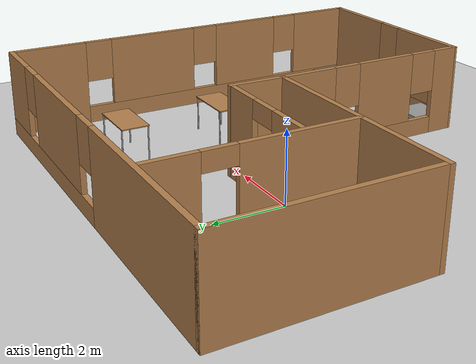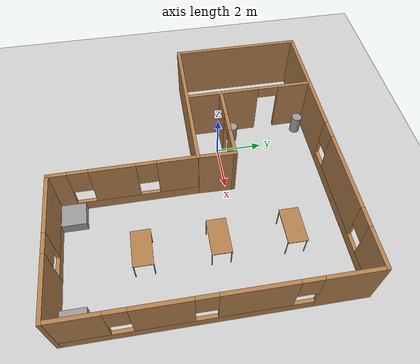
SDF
<sdf version="1.7">
 <world name="default">
  <light name="sun" type="directional">
   <pose>0 0 10 0 -0 0</pose>
   <diffuse>0.8 0.8 0.8 1</diffuse>
   <specular>0.2 0.2 0.2 1</specular>
   <attenuation>
    <range>1000</range>
    <constant>0.9</constant>
    <linear>0.01</linear>
    <quadratic>0.001</quadratic>
   </attenuation>
   <direction>-0.5 0.1 -0.9</direction>
   <spot><inner_angle>0</inner_angle><outer_angle>0</outer_angle><falloff>0</falloff></spot>
  </light>
  <model name="ground_plane">
   <static>1</static>
   <link name="link">
    <collision name="collision">
     <geometry><plane><normal>0 0 1</normal><size>100 100</size></plane></geometry>
     <surface>
      <contact><collide_bitmask>65535</collide_bitmask></contact>
      <friction><ode><mu>100</mu><mu2>50</mu2></ode></friction>
     </surface>
    </collision>
    <visual name="visual">
     <cast_shadows>0</cast_shadows>
     <geometry><plane><normal>0 0 1</normal><size>100 100</size></plane></geometry>
     <material>
      <script><uri>file://media/materials/scripts/gazebo.material</uri><name>Gazebo/Grey</name></script>
     </material>
    </visual>
   </link>
  </model>
  <gravity>0 0 -9.8</gravity>
  <magnetic_field>6e-06 2.3e-05 -4.2e-05</magnetic_field>
  <atmosphere type="adiabatic"/>
  <physics type="ode">
   <max_step_size>0.001</max_step_size>
   <real_time_factor>1</real_time_factor>
   <real_time_update_rate>1000</real_time_update_rate>
  </physics>
  <scene><ambient>0.4 0.4 0.4 1</ambient><background>0.7 0.7 0.7 1</background><shadows>1</shadows></scene>
  <audio><device>default</device></audio>
  <spherical_coordinates>
   <surface_model>EARTH_WGS84</surface_model>
   <latitude_deg>0</latitude_deg>
   <longitude_deg>0</longitude_deg>
   <elevation>0</elevation>
   <heading_deg>0</heading_deg>
  </spherical_coordinates>
  <model name="Untitled">
   <pose>1.805 -1.34511 0 0 -0 0</pose>
   <link name="Wall_0">
    <collision name="Wall_0_Collision">
     <geometry><box><size>5.5 0.15 2.5</size></box></geometry>
     <pose>0 0 1.25 0 -0 0</pose>
    </collision>
    <visual name="Wall_0_Visual">
     <pose>0 0 1.25 0 -0 0</pose>
     <geometry><box><size>5.5 0.15 2.5</size></box></geometry>
     <material>
      <script><uri>file://media/materials/scripts/gazebo.material</uri><name>Gazebo/Wood</name></script>
      <ambient>1 1 1 1</ambient>
     </material>
     <meta><layer>0</layer></meta>
    </visual>
    <pose>-5.925 3.00011 0 0 -0 1.5708</pose>
   </link>
   <link name="Wall_1">
    <pose>-0 5.67511 0 0 -0 0</pose>
    <visual name="Wall_1_Visual_0">
     <pose>-3.32019 0 1.25 0 -0 0</pose>
     <geometry><box><size>5.35962 0.15 2.5</size></box></geometry>
     <material>
      <script><uri>file://media/materials/scripts/gazebo.material</uri><name>Gazebo/Wood</name></script>
      <ambient>1 1 1 1</ambient>
     </material>
     <meta><layer>0</layer></meta>
    </visual>
    <collision name="Wall_1_Collision_0">
     <geometry><box><size>5.35962 0.15 2.5</size></box></geometry>
     <pose>-3.32019 0 1.25 0 -0 0</pose>
    </collision>
    <visual name="Wall_1_Visual_1">
     <pose>2.67981 0 0.25 0 -0 0</pose>
     <geometry><box><size>6.64038 0.15 0.5</size></box></geometry>
     <material>
      <script><uri>file://media/materials/scripts/gazebo.material</uri><name>Gazebo/Wood</name></script>
      <ambient>1 1 1 1</ambient>
     </material>
     <meta><layer>0</layer></meta>
    </visual>
    <collision name="Wall_1_Collision_1">
     <geometry><box><size>6.64038 0.15 0.5</size></box></geometry>
     <pose>2.67981 0 0.25 0 -0 0</pose>
    </collision>
    <visual name="Wall_1_Visual_2">
     <pose>1.86149 0 1.5 0 -0 0</pose>
     <geometry><box><size>3.40374 0.15 2</size></box></geometry>
     <material>
      <script><uri>file://media/materials/scripts/gazebo.material</uri><name>Gazebo/Wood</name></script>
      <ambient>1 1 1 1</ambient>
     </material>
     <meta><layer>0</layer></meta>
    </visual>
    <collision name="Wall_1_Collision_2">
     <geometry><box><size>3.40374 0.15 2</size></box></geometry>
     <pose>1.86149 0 1.5 0 -0 0</pose>
    </collision>
    <visual name="Wall_1_Visual_3">
     <pose>5.18168 0 1.5 0 -0 0</pose>
     <geometry><box><size>1.63664 0.15 2</size></box></geometry>
     <material>
      <script><uri>file://media/materials/scripts/gazebo.material</uri><name>Gazebo/Wood</name></script>
      <ambient>1 1 1 1</ambient>
     </material>
     <meta><layer>0</layer></meta>
    </visual>
    <collision name="Wall_1_Collision_3">
     <geometry><box><size>1.63664 0.15 2</size></box></geometry>
     <pose>5.18168 0 1.5 0 -0 0</pose>
    </collision>
    <visual name="Wall_1_Visual_4">
     <pose>-0.240377 0 1.9 0 -0 0</pose>
     <geometry><box><size>0.8 0.15 1.2</size></box></geometry>
     <material>
      <script><uri>file://media/materials/scripts/gazebo.material</uri><name>Gazebo/Wood</name></script>
      <ambient>1 1 1 1</ambient>
     </material>
     <meta><layer>0</layer></meta>
    </visual>
    <collision name="Wall_1_Collision_4">
     <geometry><box><size>0.8 0.15 1.2</size></box></geometry>
     <pose>-0.240377 0 1.9 0 -0 0</pose>
    </collision>
    <visual name="Wall_1_Visual_5">
     <pose>3.96336 0 1.9 0 -0 0</pose>
     <geometry><box><size>0.8 0.15 1.2</size></box></geometry>
     <material>
      <script><uri>file://media/materials/scripts/gazebo.material</uri><name>Gazebo/Wood</name></script>
      <ambient>1 1 1 1</ambient>
     </material>
     <meta><layer>0</layer></meta>
    </visual>
    <collision name="Wall_1_Collision_5">
     <geometry><box><size>0.8 0.15 1.2</size></box></geometry>
     <pose>3.96336 0 1.9 0 -0 0</pose>
    </collision>
   </link>
   <link name="Wall_11">
    <collision name="Wall_11_Collision">
     <geometry><box><size>1.63649 0.15 2.5</size></box></geometry>
     <pose>0 0 1.25 0 -0 0</pose>
    </collision>
    <visual name="Wall_11_Visual">
     <pose>0 0 1.25 0 -0 0</pose>
     <geometry><box><size>1.63649 0.15 2.5</size></box></geometry>
     <material>
      <script><uri>file://media/materials/scripts/gazebo.material</uri><name>Gazebo/Wood</name></script>
      <ambient>1 1 1 1</ambient>
     </material>
     <meta><layer>0</layer></meta>
    </visual>
    <pose>0.327364 0.896432 0 0 -0 1.54445</pose>
   </link>
   <link name="Wall_2">
    <pose>5.925 0.00011 0 0 -0 -1.5708</pose>
    <visual name="Wall_2_Visual_0">
     <pose>-4.63054 0 1.25 0 -0 0</pose>
     <geometry><box><size>2.23891 0.15 2.5</size></box></geometry>
     <material>
      <script><uri>file://media/materials/scripts/gazebo.material</uri><name>Gazebo/Wood</name></script>
      <ambient>1 1 1 1</ambient>
     </material>
     <meta><layer>0</layer></meta>
    </visual>
    <collision name="Wall_2_Collision_0">
     <geometry><box><size>2.23891 0.15 2.5</size></box></geometry>
     <pose>-4.63054 0 1.25 0 -0 0</pose>
    </collision>
    <visual name="Wall_2_Visual_1">
     <pose>1.11946 0 0.25 0 -0 0</pose>
     <geometry><box><size>9.26108 0.15 0.5</size></box></geometry>
     <material>
      <script><uri>file://media/materials/scripts/gazebo.material</uri><name>Gazebo/Wood</name></script>
      <ambient>1 1 1 1</ambient>
     </material>
     <meta><layer>0</layer></meta>
    </visual>
    <collision name="Wall_2_Collision_1">
     <geometry><box><size>9.26108 0.15 0.5</size></box></geometry>
     <pose>1.11946 0 0.25 0 -0 0</pose>
    </collision>
    <visual name="Wall_2_Visual_2">
     <pose>-1.34852 0 1.5 0 -0 0</pose>
     <geometry><box><size>2.72512 0.15 2</size></box></geometry>
     <material>
      <script><uri>file://media/materials/scripts/gazebo.material</uri><name>Gazebo/Wood</name></script>
      <ambient>1 1 1 1</ambient>
     </material>
     <meta><layer>0</layer></meta>
    </visual>
    <collision name="Wall_2_Collision_2">
     <geometry><box><size>2.72512 0.15 2</size></box></geometry>
     <pose>-1.34852 0 1.5 0 -0 0</pose>
    </collision>
    <visual name="Wall_2_Visual_3">
     <pose>1.88974 0 1.5 0 -0 0</pose>
     <geometry><box><size>2.1514 0.15 2</size></box></geometry>
     <material>
      <script><uri>file://media/materials/scripts/gazebo.material</uri><name>Gazebo/Wood</name></script>
      <ambient>1 1 1 1</ambient>
     </material>
     <meta><layer>0</layer></meta>
    </visual>
    <collision name="Wall_2_Collision_3">
     <geometry><box><size>2.1514 0.15 2</size></box></geometry>
     <pose>1.88974 0 1.5 0 -0 0</pose>
    </collision>
    <visual name="Wall_2_Visual_4">
     <pose>4.75772 0 1.5 0 -0 0</pose>
     <geometry><box><size>1.98456 0.15 2</size></box></geometry>
     <material>
      <script><uri>file://media/materials/scripts/gazebo.material</uri><name>Gazebo/Wood</name></script>
      <ambient>1 1 1 1</ambient>
     </material>
     <meta><layer>0</layer></meta>
    </visual>
    <collision name="Wall_2_Collision_4">
     <geometry><box><size>1.98456 0.15 2</size></box></geometry>
     <pose>4.75772 0 1.5 0 -0 0</pose>
    </collision>
    <visual name="Wall_2_Visual_5">
     <pose>-3.11109 0 1.9 0 -0 0</pose>
     <geometry><box><size>0.8 0.15 1.2</size></box></geometry>
     <material>
      <script><uri>file://media/materials/scripts/gazebo.material</uri><name>Gazebo/Wood</name></script>
      <ambient>1 1 1 1</ambient>
     </material>
     <meta><layer>0</layer></meta>
    </visual>
    <collision name="Wall_2_Collision_5">
     <geometry><box><size>0.8 0.15 1.2</size></box></geometry>
     <pose>-3.11109 0 1.9 0 -0 0</pose>
    </collision>
    <visual name="Wall_2_Visual_6">
     <pose>0.41404 0 1.9 0 -0 0</pose>
     <geometry><box><size>0.8 0.15 1.2</size></box></geometry>
     <material>
      <script><uri>file://media/materials/scripts/gazebo.material</uri><name>Gazebo/Wood</name></script>
      <ambient>1 1 1 1</ambient>
     </material>
     <meta><layer>0</layer></meta>
    </visual>
    <collision name="Wall_2_Collision_6">
     <geometry><box><size>0.8 0.15 1.2</size></box></geometry>
     <pose>0.41404 0 1.9 0 -0 0</pose>
    </collision>
    <visual name="Wall_2_Visual_7">
     <pose>3.36544 0 1.9 0 -0 0</pose>
     <geometry><box><size>0.8 0.15 1.2</size></box></geometry>
     <material>
      <script><uri>file://media/materials/scripts/gazebo.material</uri><name>Gazebo/Wood</name></script>
      <ambient>1 1 1 1</ambient>
     </material>
     <meta><layer>0</layer></meta>
    </visual>
    <collision name="Wall_2_Collision_7">
     <geometry><box><size>0.8 0.15 1.2</size></box></geometry>
     <pose>3.36544 0 1.9 0 -0 0</pose>
    </collision>
   </link>
   <link name="Wall_3">
    <pose>3.125 -5.67489 0 0 -0 3.14159</pose>
    <visual name="Wall_3_Visual_0">
     <pose>-1.65227 0 1.25 0 -0 0</pose>
     <geometry><box><size>2.44547 0.15 2.5</size></box></geometry>
     <material>
      <script><uri>file://media/materials/scripts/gazebo.material</uri><name>Gazebo/Wood</name></script>
      <ambient>1 1 1 1</ambient>
     </material>
     <meta><layer>0</layer></meta>
    </visual>
    <collision name="Wall_3_Collision_0">
     <geometry><box><size>2.44547 0.15 2.5</size></box></geometry>
     <pose>-1.65227 0 1.25 0 -0 0</pose>
    </collision>
    <visual name="Wall_3_Visual_1">
     <pose>1.22273 0 0.25 0 -0 0</pose>
     <geometry><box><size>3.30453 0.15 0.5</size></box></geometry>
     <material>
      <script><uri>file://media/materials/scripts/gazebo.material</uri><name>Gazebo/Wood</name></script>
      <ambient>1 1 1 1</ambient>
     </material>
     <meta><layer>0</layer></meta>
    </visual>
    <collision name="Wall_3_Collision_1">
     <geometry><box><size>3.30453 0.15 0.5</size></box></geometry>
     <pose>1.22273 0 0.25 0 -0 0</pose>
    </collision>
    <visual name="Wall_3_Visual_2">
     <pose>1.62273 0 1.5 0 -0 0</pose>
     <geometry><box><size>2.50453 0.15 2</size></box></geometry>
     <material>
      <script><uri>file://media/materials/scripts/gazebo.material</uri><name>Gazebo/Wood</name></script>
      <ambient>1 1 1 1</ambient>
     </material>
     <meta><layer>0</layer></meta>
    </visual>
    <collision name="Wall_3_Collision_2">
     <geometry><box><size>2.50453 0.15 2</size></box></geometry>
     <pose>1.62273 0 1.5 0 -0 0</pose>
    </collision>
    <visual name="Wall_3_Visual_3">
     <pose>-0.029531 0 1.9 0 -0 0</pose>
     <geometry><box><size>0.8 0.15 1.2</size></box></geometry>
     <material>
      <script><uri>file://media/materials/scripts/gazebo.material</uri><name>Gazebo/Wood</name></script>
      <ambient>1 1 1 1</ambient>
     </material>
     <meta><layer>0</layer></meta>
    </visual>
    <collision name="Wall_3_Collision_3">
     <geometry><box><size>0.8 0.15 1.2</size></box></geometry>
     <pose>-0.029531 0 1.9 0 -0 0</pose>
    </collision>
   </link>
   <link name="Wall_4">
    <pose>0.316394 -2.7645 0 0 -0 1.57375</pose>
    <visual name="Wall_4_Visual_0">
     <pose>-2.5713 0 1.25 0 -0 0</pose>
     <geometry><box><size>0.828193 0.15 2.5</size></box></geometry>
     <material>
      <script><uri>file://media/materials/scripts/gazebo.material</uri><name>Gazebo/Wood</name></script>
      <ambient>1 1 1 1</ambient>
     </material>
     <meta><layer>0</layer></meta>
    </visual>
    <collision name="Wall_4_Collision_0">
     <geometry><box><size>0.828193 0.15 2.5</size></box></geometry>
     <pose>-2.5713 0 1.25 0 -0 0</pose>
    </collision>
    <visual name="Wall_4_Visual_1">
     <pose>0.414097 0 0.25 0 -0 0</pose>
     <geometry><box><size>5.1426 0.15 0.5</size></box></geometry>
     <material>
      <script><uri>file://media/materials/scripts/gazebo.material</uri><name>Gazebo/Wood</name></script>
      <ambient>1 1 1 1</ambient>
     </material>
     <meta><layer>0</layer></meta>
    </visual>
    <collision name="Wall_4_Collision_1">
     <geometry><box><size>5.1426 0.15 0.5</size></box></geometry>
     <pose>0.414097 0 0.25 0 -0 0</pose>
    </collision>
    <visual name="Wall_4_Visual_2">
     <pose>-0.441655 0 1.5 0 -0 0</pose>
     <geometry><box><size>1.8311 0.15 2</size></box></geometry>
     <material>
      <script><uri>file://media/materials/scripts/gazebo.material</uri><name>Gazebo/Wood</name></script>
      <ambient>1 1 1 1</ambient>
     </material>
     <meta><layer>0</layer></meta>
    </visual>
    <collision name="Wall_4_Collision_2">
     <geometry><box><size>1.8311 0.15 2</size></box></geometry>
     <pose>-0.441655 0 1.5 0 -0 0</pose>
    </collision>
    <visual name="Wall_4_Visual_3">
     <pose>2.12965 0 1.5 0 -0 0</pose>
     <geometry><box><size>1.7115 0.15 2</size></box></geometry>
     <material>
      <script><uri>file://media/materials/scripts/gazebo.material</uri><name>Gazebo/Wood</name></script>
      <ambient>1 1 1 1</ambient>
     </material>
     <meta><layer>0</layer></meta>
    </visual>
    <collision name="Wall_4_Collision_3">
     <geometry><box><size>1.7115 0.15 2</size></box></geometry>
     <pose>2.12965 0 1.5 0 -0 0</pose>
    </collision>
    <visual name="Wall_4_Visual_4">
     <pose>-1.75721 0 1.9 0 -0 0</pose>
     <geometry><box><size>0.8 0.15 1.2</size></box></geometry>
     <material>
      <script><uri>file://media/materials/scripts/gazebo.material</uri><name>Gazebo/Wood</name></script>
      <ambient>1 1 1 1</ambient>
     </material>
     <meta><layer>0</layer></meta>
    </visual>
    <collision name="Wall_4_Collision_4">
     <geometry><box><size>0.8 0.15 1.2</size></box></geometry>
     <pose>-1.75721 0 1.9 0 -0 0</pose>
    </collision>
    <visual name="Wall_4_Visual_5">
     <pose>0.873896 0 1.9 0 -0 0</pose>
     <geometry><box><size>0.8 0.15 1.2</size></box></geometry>
     <material>
      <script><uri>file://media/materials/scripts/gazebo.material</uri><name>Gazebo/Wood</name></script>
      <ambient>1 1 1 1</ambient>
     </material>
     <meta><layer>0</layer></meta>
    </visual>
    <collision name="Wall_4_Collision_5">
     <geometry><box><size>0.8 0.15 1.2</size></box></geometry>
     <pose>0.873896 0 1.9 0 -0 0</pose>
    </collision>
   </link>
   <link name="Wall_5">
    <collision name="Wall_5_Collision">
     <geometry><box><size>6.38235 0.15 2.5</size></box></geometry>
     <pose>0 0 1.25 0 -0 0</pose>
    </collision>
    <visual name="Wall_5_Visual">
     <pose>0 0 1.25 0 -0 0</pose>
     <geometry><box><size>6.38235 0.15 2.5</size></box></geometry>
     <material>
      <script><uri>file://media/materials/scripts/gazebo.material</uri><name>Gazebo/Wood</name></script>
      <ambient>1 1 1 1</ambient>
     </material>
     <meta><layer>0</layer></meta>
    </visual>
    <pose>-2.80834 0.162406 0 0 -0 3.13629</pose>
   </link>
   <link name="Wall_7">
    <pose>-3.02974 2.88746 0 0 -0 -1.5708</pose>
    <visual name="Wall_7_Visual_0">
     <pose>-2.04747 0 1.25 0 -0 0</pose>
     <geometry><box><size>1.40506 0.15 2.5</size></box></geometry>
     <material>
      <script><uri>file://media/materials/scripts/gazebo.material</uri><name>Gazebo/Wood</name></script>
      <ambient>1 1 1 1</ambient>
     </material>
     <meta><layer>0</layer></meta>
    </visual>
    <collision name="Wall_7_Collision_0">
     <geometry><box><size>1.40506 0.15 2.5</size></box></geometry>
     <pose>-2.04747 0 1.25 0 -0 0</pose>
    </collision>
    <visual name="Wall_7_Visual_1">
     <pose>1.15253 0 1.25 0 -0 0</pose>
     <geometry><box><size>3.19494 0.15 2.5</size></box></geometry>
     <material>
      <script><uri>file://media/materials/scripts/gazebo.material</uri><name>Gazebo/Wood</name></script>
      <ambient>1 1 1 1</ambient>
     </material>
     <meta><layer>0</layer></meta>
    </visual>
    <collision name="Wall_7_Collision_1">
     <geometry><box><size>3.19494 0.15 2.5</size></box></geometry>
     <pose>1.15253 0 1.25 0 -0 0</pose>
    </collision>
    <visual name="Wall_7_Visual_2">
     <pose>-0.89494 0 2.25 0 -0 0</pose>
     <geometry><box><size>0.9 0.15 0.5</size></box></geometry>
     <material>
      <script><uri>file://media/materials/scripts/gazebo.material</uri><name>Gazebo/Wood</name></script>
      <ambient>1 1 1 1</ambient>
     </material>
     <meta><layer>0</layer></meta>
    </visual>
    <collision name="Wall_7_Collision_2">
     <geometry><box><size>0.9 0.15 0.5</size></box></geometry>
     <pose>-0.89494 0 2.25 0 -0 0</pose>
    </collision>
   </link>
   <link name="Wall_9">
    <pose>-1.26919 1.64932 0 0 -0 -0.010801</pose>
    <visual name="Wall_9_Visual_0">
     <pose>-1.08163 0 1.25 0 -0 0</pose>
     <geometry><box><size>1.21918 0.15 2.5</size></box></geometry>
     <material>
      <script><uri>file://media/materials/scripts/gazebo.material</uri><name>Gazebo/Wood</name></script>
      <ambient>1 1 1 1</ambient>
     </material>
     <meta><layer>0</layer></meta>
    </visual>
    <collision name="Wall_9_Collision_0">
     <geometry><box><size>1.21918 0.15 2.5</size></box></geometry>
     <pose>-1.08163 0 1.25 0 -0 0</pose>
    </collision>
    <visual name="Wall_9_Visual_1">
     <pose>1.05959 0 1.25 0 -0 0</pose>
     <geometry><box><size>1.26326 0.15 2.5</size></box></geometry>
     <material>
      <script><uri>file://media/materials/scripts/gazebo.material</uri><name>Gazebo/Wood</name></script>
      <ambient>1 1 1 1</ambient>
     </material>
     <meta><layer>0</layer></meta>
    </visual>
    <collision name="Wall_9_Collision_1">
     <geometry><box><size>1.26326 0.15 2.5</size></box></geometry>
     <pose>1.05959 0 1.25 0 -0 0</pose>
    </collision>
    <visual name="Wall_9_Visual_2">
     <pose>-0.022041 0 2.25 0 -0 0</pose>
     <geometry><box><size>0.9 0.15 0.5</size></box></geometry>
     <material>
      <script><uri>file://media/materials/scripts/gazebo.material</uri><name>Gazebo/Wood</name></script>
      <ambient>1 1 1 1</ambient>
     </material>
     <meta><layer>0</layer></meta>
    </visual>
    <collision name="Wall_9_Collision_2">
     <geometry><box><size>0.9 0.15 0.5</size></box></geometry>
     <pose>-0.022041 0 2.25 0 -0 0</pose>
    </collision>
   </link>
   <static>1</static>
  </model>
  <model name="Untitled_0">
   <link name="link_0">
    <inertial>
     <mass>0.5741</mass>
     <inertia>
      <ixx>0.0636098</ixx>
      <ixy>0</ixy>
      <ixz>0</ixz>
      <iyy>0.0636098</iyy>
      <iyz>0</iyz>
      <izz>0.0956834</izz>
     </inertia>
    </inertial>
    <pose>-1.97179 -4.31872 -0.156493 0 -0 0</pose>
    <visual name="visual">
     <geometry><box><size>1 1 0.574098</size></box></geometry>
     <material>
      <lighting>1</lighting>
      <script><uri>file://media/materials/scripts/gazebo.material</uri><name>Gazebo/Grey</name></script>
      <shader type="pixel"/>
     </material>
    </visual>
    <collision name="collision">
     <geometry><box><size>1 1 0.574098</size></box></geometry>
     <surface>
      <friction>
       <ode><mu>1</mu><mu2>1</mu2><fdir1>0 0 0</fdir1><slip1>0</slip1><slip2>0</slip2></ode>
       <torsional>
        <coefficient>1</coefficient>
        <patch_radius>0</patch_radius>
        <surface_radius>0</surface_radius>
        <use_patch_radius>1</use_patch_radius>
        <ode><slip>0</slip></ode>
       </torsional>
      </friction>
      <bounce><restitution_coefficient>0</restitution_coefficient><threshold>1e+06</threshold></bounce>
      <contact>
       <collide_without_contact>0</collide_without_contact>
       <collide_without_contact_bitmask>1</collide_without_contact_bitmask>
       <collide_bitmask>1</collide_bitmask>
       <ode>
        <soft_cfm>0</soft_cfm>
        <soft_erp>0.2</soft_erp>
        <kp>1e+13</kp>
        <kd>1</kd>
        <max_vel>0.01</max_vel>
        <min_depth>0</min_depth>
       </ode>
       <bullet>
        <split_impulse>1</split_impulse>
        <split_impulse_penetration_threshold>-0.01</split_impulse_penetration_threshold>
        <soft_cfm>0</soft_cfm>
        <soft_erp>0.2</soft_erp>
        <kp>1e+13</kp>
        <kd>1</kd>
       </bullet>
      </contact>
     </surface>
    </collision>
   </link>
   <link name="link_0_clone">
    <inertial>
     <mass>0.5741</mass>
     <inertia>
      <ixx>0.0636098</ixx>
      <ixy>0</ixy>
      <ixz>0</ixz>
      <iyy>0.0636098</iyy>
      <iyz>0</iyz>
      <izz>0.0956834</izz>
     </inertia>
    </inertial>
    <pose>2.48986 -4.32906 -0.156493 0 -0 0</pose>
    <visual name="visual">
     <geometry><box><size>1 1 0.574098</size></box></geometry>
     <material>
      <lighting>1</lighting>
      <script><uri>file://media/materials/scripts/gazebo.material</uri><name>Gazebo/Grey</name></script>
      <shader type="pixel"/>
     </material>
    </visual>
    <collision name="collision">
     <geometry><box><size>1 1 0.574098</size></box></geometry>
     <surface>
      <friction>
       <ode><mu>1</mu><mu2>1</mu2><fdir1>0 0 0</fdir1><slip1>0</slip1><slip2>0</slip2></ode>
       <torsional>
        <coefficient>1</coefficient>
        <patch_radius>0</patch_radius>
        <surface_radius>0</surface_radius>
        <use_patch_radius>1</use_patch_radius>
        <ode><slip>0</slip></ode>
       </torsional>
      </friction>
      <bounce><restitution_coefficient>0</restitution_coefficient><threshold>1e+06</threshold></bounce>
      <contact>
       <collide_without_contact>0</collide_without_contact>
       <collide_without_contact_bitmask>1</collide_without_contact_bitmask>
       <collide_bitmask>1</collide_bitmask>
       <ode>
        <soft_cfm>0</soft_cfm>
        <soft_erp>0.2</soft_erp>
        <kp>1e+13</kp>
        <kd>1</kd>
        <max_vel>0.01</max_vel>
        <min_depth>0</min_depth>
       </ode>
       <bullet>
        <split_impulse>1</split_impulse>
        <split_impulse_penetration_threshold>-0.01</split_impulse_penetration_threshold>
        <soft_cfm>0</soft_cfm>
        <soft_erp>0.2</soft_erp>
        <kp>1e+13</kp>
        <kd>1</kd>
       </bullet>
      </contact>
     </surface>
    </collision>
   </link>
   <link name="link_1">
    <inertial>
     <mass>0.16936</mass>
     <inertia>
      <ixx>0.0123406</ixx>
      <ixy>0</ixy>
      <ixz>0</ixz>
      <iyy>0.0123406</iyy>
      <iyz>0</iyz>
      <izz>0.00420802</izz>
     </inertia>
    </inertial>
    <pose>-5.39994 6.00464 0.097134 0 -0 0</pose>
    <visual name="visual">
     <geometry><cylinder><radius>0.222919</radius><length>0.851652</length></cylinder></geometry>
     <material>
      <lighting>1</lighting>
      <script><uri>file://media/materials/scripts/gazebo.material</uri><name>Gazebo/Grey</name></script>
      <shader type="pixel"/>
     </material>
    </visual>
    <collision name="collision">
     <geometry><cylinder><radius>0.222919</radius><length>0.851652</length></cylinder></geometry>
     <surface>
      <friction>
       <ode><mu>1</mu><mu2>1</mu2><fdir1>0 0 0</fdir1><slip1>0</slip1><slip2>0</slip2></ode>
       <torsional>
        <coefficient>1</coefficient>
        <patch_radius>0</patch_radius>
        <surface_radius>0</surface_radius>
        <use_patch_radius>1</use_patch_radius>
        <ode><slip>0</slip></ode>
       </torsional>
      </friction>
      <bounce><restitution_coefficient>0</restitution_coefficient><threshold>1e+06</threshold></bounce>
      <contact>
       <collide_without_contact>0</collide_without_contact>
       <collide_without_contact_bitmask>1</collide_without_contact_bitmask>
       <collide_bitmask>1</collide_bitmask>
       <ode>
        <soft_cfm>0</soft_cfm>
        <soft_erp>0.2</soft_erp>
        <kp>1e+13</kp>
        <kd>1</kd>
        <max_vel>0.01</max_vel>
        <min_depth>0</min_depth>
       </ode>
       <bullet>
        <split_impulse>1</split_impulse>
        <split_impulse_penetration_threshold>-0.01</split_impulse_penetration_threshold>
        <soft_cfm>0</soft_cfm>
        <soft_erp>0.2</soft_erp>
        <kp>1e+13</kp>
        <kd>1</kd>
       </bullet>
      </contact>
     </surface>
    </collision>
   </link>
   <link name="link_1_clone">
    <inertial>
     <mass>0.16936</mass>
     <inertia>
      <ixx>0.0123406</ixx>
      <ixy>0</ixy>
      <ixz>0</ixz>
      <iyy>0.0123406</iyy>
      <iyz>0</iyz>
      <izz>0.00420802</izz>
     </inertia>
    </inertial>
    <pose>-5.29785 2.92011 0.097134 0 -0 0</pose>
    <visual name="visual">
     <geometry><cylinder><radius>0.222919</radius><length>0.851652</length></cylinder></geometry>
     <material>
      <lighting>1</lighting>
      <script><uri>file://media/materials/scripts/gazebo.material</uri><name>Gazebo/Grey</name></script>
      <shader type="pixel"/>
     </material>
    </visual>
    <collision name="collision">
     <geometry><cylinder><radius>0.222919</radius><length>0.851652</length></cylinder></geometry>
     <surface>
      <friction>
       <ode><mu>1</mu><mu2>1</mu2><fdir1>0 0 0</fdir1><slip1>0</slip1><slip2>0</slip2></ode>
       <torsional>
        <coefficient>1</coefficient>
        <patch_radius>0</patch_radius>
        <surface_radius>0</surface_radius>
        <use_patch_radius>1</use_patch_radius>
        <ode><slip>0</slip></ode>
       </torsional>
      </friction>
      <bounce><restitution_coefficient>0</restitution_coefficient><threshold>1e+06</threshold></bounce>
      <contact>
       <collide_without_contact>0</collide_without_contact>
       <collide_without_contact_bitmask>1</collide_without_contact_bitmask>
       <collide_bitmask>1</collide_bitmask>
       <ode>
        <soft_cfm>0</soft_cfm>
        <soft_erp>0.2</soft_erp>
        <kp>1e+13</kp>
        <kd>1</kd>
        <max_vel>0.01</max_vel>
        <min_depth>0</min_depth>
       </ode>
       <bullet>
        <split_impulse>1</split_impulse>
        <split_impulse_penetration_threshold>-0.01</split_impulse_penetration_threshold>
        <soft_cfm>0</soft_cfm>
        <soft_erp>0.2</soft_erp>
        <kp>1e+13</kp>
        <kd>1</kd>
       </bullet>
      </contact>
     </surface>
    </collision>
   </link>
   <model name="table">
    <static>1</static>
    <link name="link">
     <collision name="surface">
      <pose>0 0 1 0 -0 0</pose>
      <geometry><box><size>1.5 0.8 0.03</size></box></geometry>
      <surface><friction><ode><mu>0.6</mu><mu2>0.6</mu2></ode></friction></surface>
     </collision>
     <visual name="visual1">
      <pose>0 0 1 0 -0 0</pose>
      <geometry><box><size>1.5 0.8 0.03</size></box></geometry>
      <material>
       <script><uri>file://media/materials/scripts/gazebo.material</uri><name>Gazebo/Wood</name></script>
      </material>
     </visual>
     <collision name="front_left_leg">
      <pose>0.68 0.38 0.5 0 -0 0</pose>
      <geometry><cylinder><radius>0.02</radius><length>1</length></cylinder></geometry>
     </collision>
     <visual name="front_left_leg">
      <pose>0.68 0.38 0.5 0 -0 0</pose>
      <geometry><cylinder><radius>0.02</radius><length>1</length></cylinder></geometry>
      <material>
       <script><uri>file://media/materials/scripts/gazebo.material</uri><name>Gazebo/Grey</name></script>
      </material>
     </visual>
     <collision name="front_right_leg">
      <pose>0.68 -0.38 0.5 0 -0 0</pose>
      <geometry><cylinder><radius>0.02</radius><length>1</length></cylinder></geometry>
     </collision>
     <visual name="front_right_leg">
      <pose>0.68 -0.38 0.5 0 -0 0</pose>
      <geometry><cylinder><radius>0.02</radius><length>1</length></cylinder></geometry>
      <material>
       <script><uri>file://media/materials/scripts/gazebo.material</uri><name>Gazebo/Grey</name></script>
      </material>
     </visual>
     <collision name="back_right_leg">
      <pose>-0.68 -0.38 0.5 0 -0 0</pose>
      <geometry><cylinder><radius>0.02</radius><length>1</length></cylinder></geometry>
     </collision>
     <visual name="back_right_leg">
      <pose>-0.68 -0.38 0.5 0 -0 0</pose>
      <geometry><cylinder><radius>0.02</radius><length>1</length></cylinder></geometry>
      <material>
       <script><uri>file://media/materials/scripts/gazebo.material</uri><name>Gazebo/Grey</name></script>
      </material>
     </visual>
     <collision name="back_left_leg">
      <pose>-0.68 0.38 0.5 0 -0 0</pose>
      <geometry><cylinder><radius>0.02</radius><length>1</length></cylinder></geometry>
     </collision>
     <visual name="back_left_leg">
      <pose>-0.68 0.38 0.5 0 -0 0</pose>
      <geometry><cylinder><radius>0.02</radius><length>1</length></cylinder></geometry>
      <material>
       <script><uri>file://media/materials/scripts/gazebo.material</uri><name>Gazebo/Grey</name></script>
      </material>
     </visual>
    </link>
    <pose>0.246219 -1.667 -0.3296 0 -0 0</pose>
   </model>
   <model name="table_0">
    <static>1</static>
    <link name="link">
     <collision name="surface">
      <pose>0 0 1 0 -0 0</pose>
      <geometry><box><size>1.5 0.8 0.03</size></box></geometry>
      <surface><friction><ode><mu>0.6</mu><mu2>0.6</mu2></ode></friction></surface>
     </collision>
     <visual name="visual1">
      <pose>0 0 1 0 -0 0</pose>
      <geometry><box><size>1.5 0.8 0.03</size></box></geometry>
      <material>
       <script><uri>file://media/materials/scripts/gazebo.material</uri><name>Gazebo/Wood</name></script>
      </material>
     </visual>
     <collision name="front_left_leg">
      <pose>0.68 0.38 0.5 0 -0 0</pose>
      <geometry><cylinder><radius>0.02</radius><length>1</length></cylinder></geometry>
     </collision>
     <visual name="front_left_leg">
      <pose>0.68 0.38 0.5 0 -0 0</pose>
      <geometry><cylinder><radius>0.02</radius><length>1</length></cylinder></geometry>
      <material>
       <script><uri>file://media/materials/scripts/gazebo.material</uri><name>Gazebo/Grey</name></script>
      </material>
     </visual>
     <collision name="front_right_leg">
      <pose>0.68 -0.38 0.5 0 -0 0</pose>
      <geometry><cylinder><radius>0.02</radius><length>1</length></cylinder></geometry>
     </collision>
     <visual name="front_right_leg">
      <pose>0.68 -0.38 0.5 0 -0 0</pose>
      <geometry><cylinder><radius>0.02</radius><length>1</length></cylinder></geometry>
      <material>
       <script><uri>file://media/materials/scripts/gazebo.material</uri><name>Gazebo/Grey</name></script>
      </material>
     </visual>
     <collision name="back_right_leg">
      <pose>-0.68 -0.38 0.5 0 -0 0</pose>
      <geometry><cylinder><radius>0.02</radius><length>1</length></cylinder></geometry>
     </collision>
     <visual name="back_right_leg">
      <pose>-0.68 -0.38 0.5 0 -0 0</pose>
      <geometry><cylinder><radius>0.02</radius><length>1</length></cylinder></geometry>
      <material>
       <script><uri>file://media/materials/scripts/gazebo.material</uri><name>Gazebo/Grey</name></script>
      </material>
     </visual>
     <collision name="back_left_leg">
      <pose>-0.68 0.38 0.5 0 -0 0</pose>
      <geometry><cylinder><radius>0.02</radius><length>1</length></cylinder></geometry>
     </collision>
     <visual name="back_left_leg">
      <pose>-0.68 0.38 0.5 0 -0 0</pose>
      <geometry><cylinder><radius>0.02</radius><length>1</length></cylinder></geometry>
      <material>
       <script><uri>file://media/materials/scripts/gazebo.material</uri><name>Gazebo/Grey</name></script>
      </material>
     </visual>
    </link>
    <pose>0.232806 1.29185 -0.3296 0 -0 0</pose>
   </model>
   <model name="table_0_clone">
    <static>1</static>
    <link name="link">
     <collision name="surface">
      <pose>0 0 1 0 -0 0</pose>
      <geometry><box><size>1.5 0.8 0.03</size></box></geometry>
      <surface><friction><ode><mu>0.6</mu><mu2>0.6</mu2></ode></friction></surface>
     </collision>
     <visual name="visual1">
      <pose>0 0 1 0 -0 0</pose>
      <geometry><box><size>1.5 0.8 0.03</size></box></geometry>
      <material>
       <script><uri>file://media/materials/scripts/gazebo.material</uri><name>Gazebo/Wood</name></script>
      </material>
     </visual>
     <collision name="front_left_leg">
      <pose>0.68 0.38 0.5 0 -0 0</pose>
      <geometry><cylinder><radius>0.02</radius><length>1</length></cylinder></geometry>
     </collision>
     <visual name="front_left_leg">
      <pose>0.68 0.38 0.5 0 -0 0</pose>
      <geometry><cylinder><radius>0.02</radius><length>1</length></cylinder></geometry>
      <material>
       <script><uri>file://media/materials/scripts/gazebo.material</uri><name>Gazebo/Grey</name></script>
      </material>
     </visual>
     <collision name="front_right_leg">
      <pose>0.68 -0.38 0.5 0 -0 0</pose>
      <geometry><cylinder><radius>0.02</radius><length>1</length></cylinder></geometry>
     </collision>
     <visual name="front_right_leg">
      <pose>0.68 -0.38 0.5 0 -0 0</pose>
      <geometry><cylinder><radius>0.02</radius><length>1</length></cylinder></geometry>
      <material>
       <script><uri>file://media/materials/scripts/gazebo.material</uri><name>Gazebo/Grey</name></script>
      </material>
     </visual>
     <collision name="back_right_leg">
      <pose>-0.68 -0.38 0.5 0 -0 0</pose>
      <geometry><cylinder><radius>0.02</radius><length>1</length></cylinder></geometry>
     </collision>
     <visual name="back_right_leg">
      <pose>-0.68 -0.38 0.5 0 -0 0</pose>
      <geometry><cylinder><radius>0.02</radius><length>1</length></cylinder></geometry>
      <material>
       <script><uri>file://media/materials/scripts/gazebo.material</uri><name>Gazebo/Grey</name></script>
      </material>
     </visual>
     <collision name="back_left_leg">
      <pose>-0.68 0.38 0.5 0 -0 0</pose>
      <geometry><cylinder><radius>0.02</radius><length>1</length></cylinder></geometry>
     </collision>
     <visual name="back_left_leg">
      <pose>-0.68 0.38 0.5 0 -0 0</pose>
      <geometry><cylinder><radius>0.02</radius><length>1</length></cylinder></geometry>
      <material>
       <script><uri>file://media/materials/scripts/gazebo.material</uri><name>Gazebo/Grey</name></script>
      </material>
     </visual>
    </link>
    <pose>0.222647 4.23162 -0.3296 0 -0 0</pose>
   </model>
   <static>0</static>
   <pose>4.66752 -2.12469 0.3296 0 -0 0</pose>
  </model>
 </world>
</sdf>
